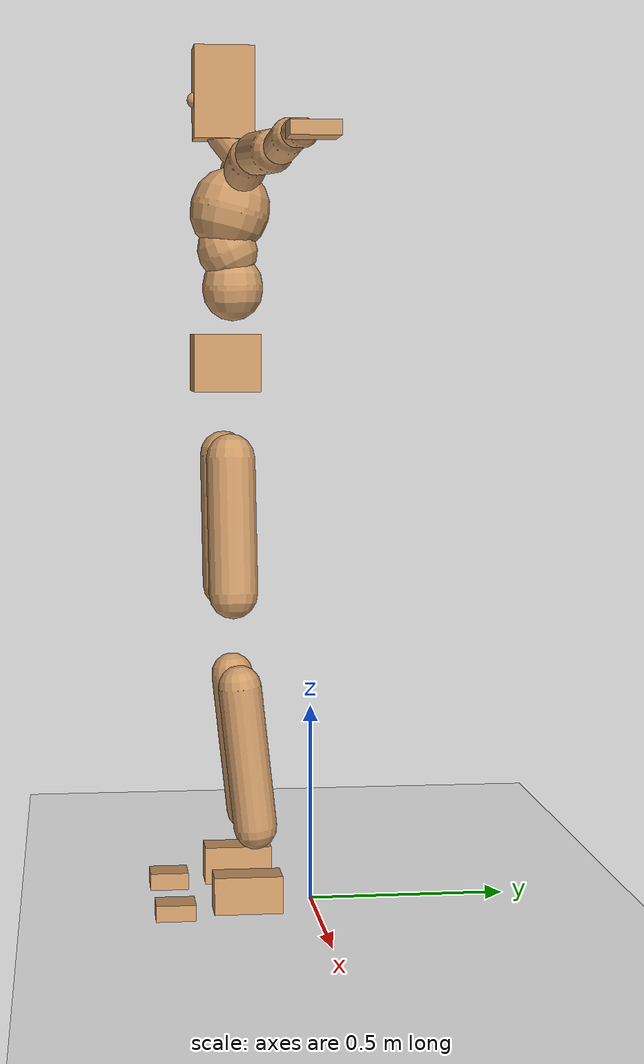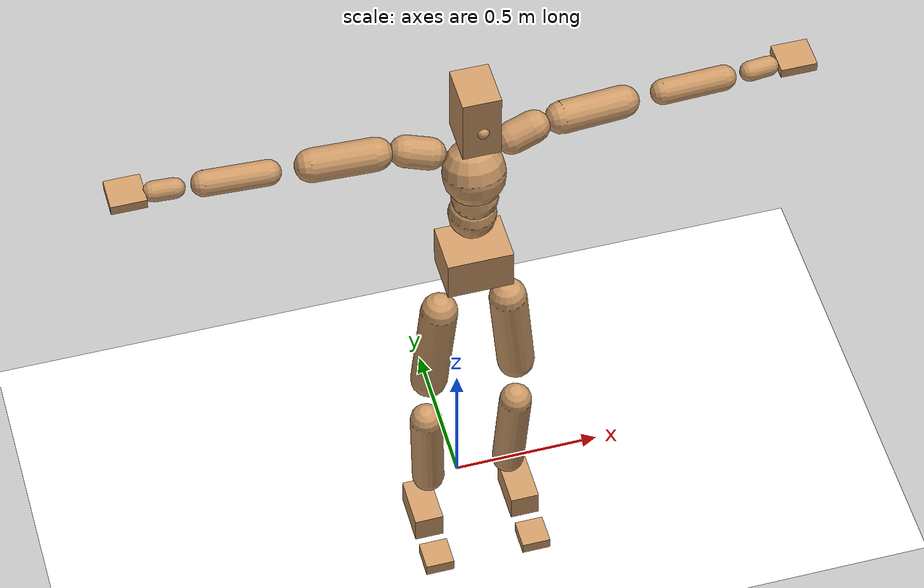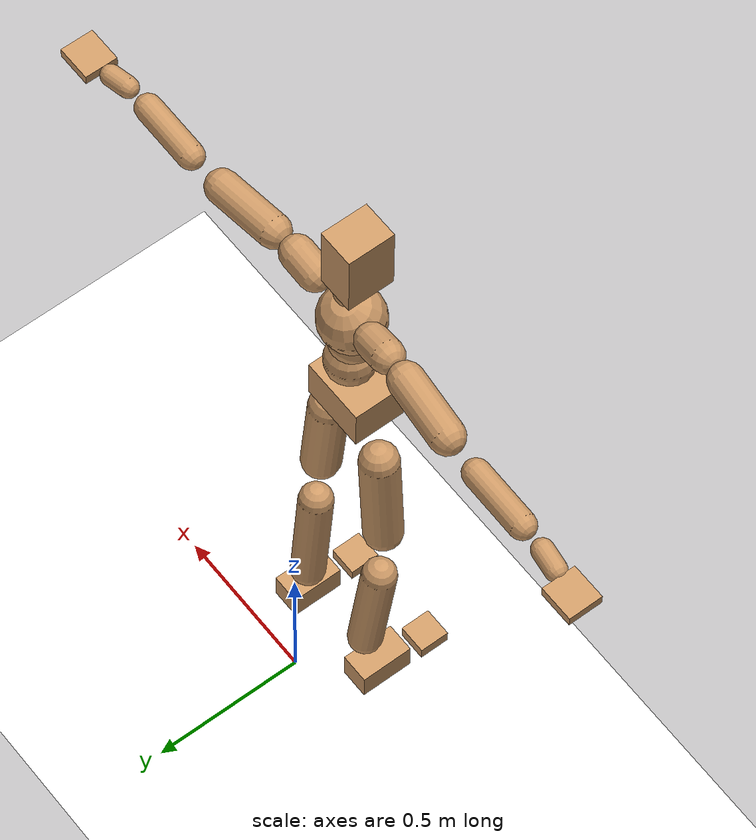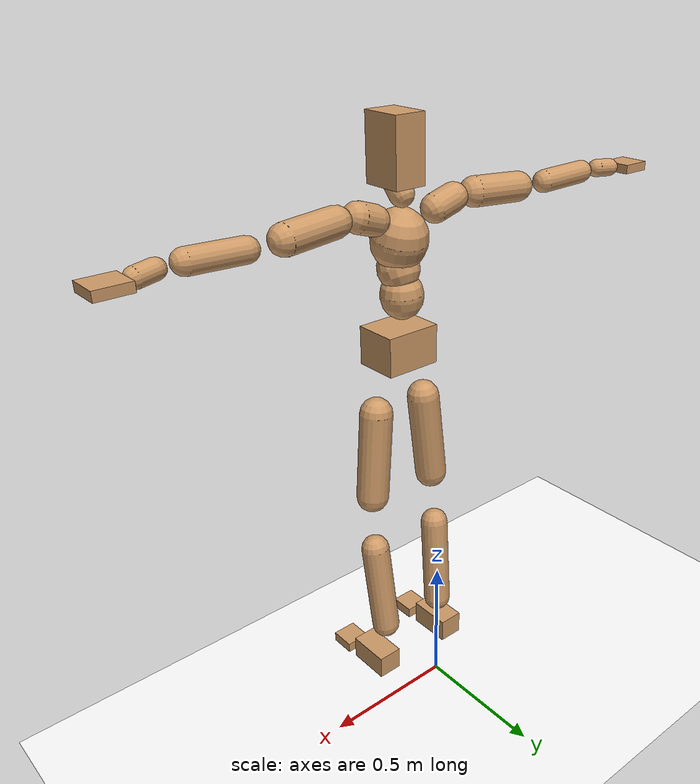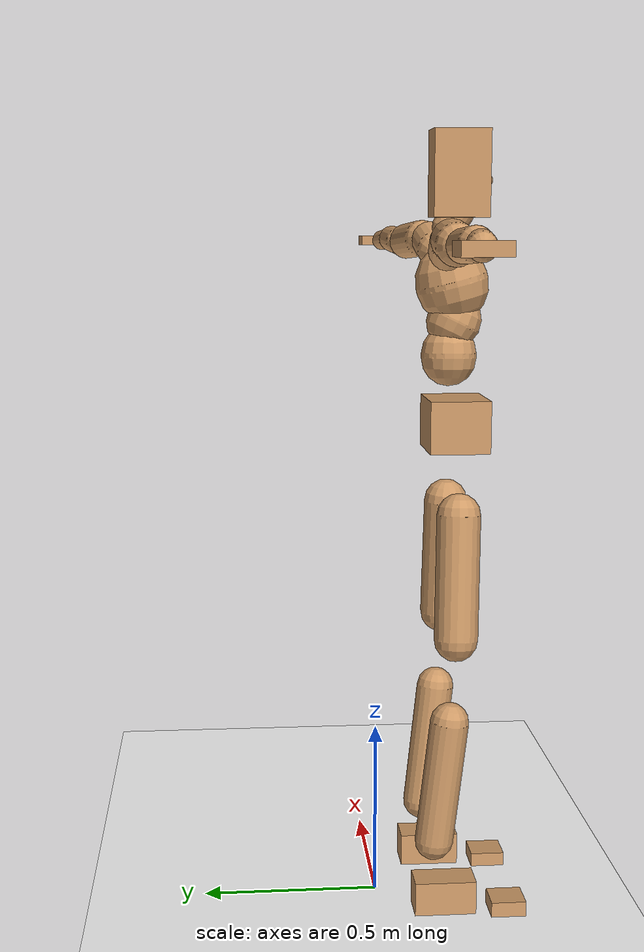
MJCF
<mujoco model="humanoid">
  <option integrator="implicitfast" />

  <visual>
    <global offwidth="1280" offheight="960" />
    <headlight active="1" ambient="0.34 0.34 0.34" diffuse="0.5 0.5 0.5" />
  </visual>

  <default>
    <joint damping="2" stiffness="2" armature="0.01" limited="true" solimplimit="0 .99 .01" />
    <geom condim="1" friction="0.7 0.005 0.0001" solimp=".99 .99 .003" solref="0.015 1" margin="0.001" rgba="0.8 0.6 .4 1" />
    <default class="smplcontact">
      <geom condim="3" friction="1. 0.005 0.0001" solref="0.015 1" solimp="0.98 0.98 0.001" priority="1" />
    </default>
    <default class="stiff_medium">
      <joint stiffness="10" />
    </default>
    <default class="stiff_medium_higher">
      <joint stiffness="50" />
    </default>
    <default class="stiff_high">
      <joint stiffness="100" />
    </default>
  </default>

  <asset>
    <texture type="skybox" builtin="gradient" rgb1="0.99 0.99 0.99" rgb2="0.608 0.828 0.892" width="100" />
    <texture builtin="flat" height="1278" mark="cross" markrgb="1 1 1" name="texgeom" random="0.01" rgb1="0.8 0.6 0.4" rgb2="0.8 0.6 0.4" type="cube" width="127" />
    <texture name="texplane" type="2d" builtin="checker" markrgb="1 1 1" rgb1="0.756 0.772 0.76" rgb2="0.6 0.6 0.6" width="100" height="100" />
    <material name="MatPlane" reflectance="0.5" texture="texplane" texrepeat="1 1" texuniform="true" />
    <material name="geom" texture="texgeom" texuniform="true" />
  </asset>

  <worldbody>
    <light name="tracking_light" pos="0 0 7" dir="0 0 -1" directional="true" cutoff="100" exponent="1" diffuse="1 1 1" specular="0.1 0.1 0.1" mode="trackcom" />
    <camera name="back" pos="0 3 2.4" xyaxes="-1 0 0 0 -1 2" mode="trackcom" />
    <camera name="side" pos="-3 0 2.4" xyaxes="0 -1 0 1 0 2" mode="trackcom" />
    <camera name="front_side" pos="-2.8 -2.8 0.8" xyaxes="0.5 -0.5 0 0.1 0.1 1" mode="trackcom" />
    <geom condim="3" name="floor" pos="0 0 0" rgba="1 1 1 1" size="100 100 .2" type="plane" material="MatPlane" />
    <body name="Pelvis" pos="-0.0018 -0.2233 1.39425" euler="90 0 0">
      <site name="Pelvis" size="0.01" />
      <freejoint name="Pelvis" />
      <geom type="box" pos="-0.0000 -0.0121 -0.0055" size="0.1069 0.0722 0.083" quat="1.0000 0.0000 0.0000 0.0000" density="3165.830099" name="Pelvis" />
      <body name="L_Hip" pos="0.10425 -0.1371 -0.0102">
        <joint name="L_Hip_x" type="hinge" pos="0 0 0" axis="1 0 0" stiffness="20.015620714285713" range="-160.0 22.92" class="stiff_medium" damping="35.83287359117287" armature="0.02851095036953482"/>
        <joint name="L_Hip_y" type="hinge" pos="0 0 0" axis="0 1 0" stiffness="19.866269693877552" range="-70.0 70.0" class="stiff_medium" damping="19.516878138369275" armature="0.019173631393182292"/>
        <joint name="L_Hip_z" type="hinge" pos="0 0 0" axis="0 0 1" stiffness="19.87905693877551" range="-28.65 90.0" class="stiff_medium" damping="23.812563344986486" armature="0.028524400066129187"/>
        <geom type="capsule" density="2040.816327" fromto="0.01035 -0.1125 -0.00135 0.0411 -0.4503 -0.0054" size="0.0615" name="L_Hip" />
        <body name="L_Knee" pos="0.05145 -0.5628 -0.00675">
          <joint name="L_Knee_x" type="hinge" pos="0 0 0" axis="1 0 0" range="-5.16 171.89" damping="17.990881080600367" armature="0.0263964285619257" stiffness="3.8318607346938776"/>
          <joint name="L_Knee_y" type="hinge" pos="0 0 0" axis="0 1 0" range="-4.58 6.88" damping="14.933138115539816" armature="0.017722990590982576" stiffness="3.932015113945578"/>
          <joint name="L_Knee_z" type="hinge" pos="0 0 0" axis="0 0 1" range="-6.88 4.58" damping="17.905219969869158" armature="0.02645515953053642" stiffness="3.7870318571428574"/>
          <geom type="capsule" density="1234.567901" fromto="-0.00405 -0.1194 -0.01305 -0.01635 -0.4776 -0.0525" size="0.0541" name="L_Knee" />
          <body name="L_Ankle" pos="-0.0204 -0.597 -0.06555">
            <joint name="L_Ankle_x" type="hinge" pos="0 0 0" axis="1 0 0" range="-45.84 45.84" class="stiff_medium" damping="9.919510798854859" armature="0.018221610090481143" stiffness="15.0"/>
            <joint name="L_Ankle_y" type="hinge" pos="0 0 0" axis="0 1 0" range="-74.48 22.92" class="stiff_medium" damping="4.917952818000752" armature="0.017915748088949288" stiffness="15.0"/>
            <joint name="L_Ankle_z" type="hinge" pos="0 0 0" axis="0 0 1" range="-4.58 4.58" class="stiff_medium" damping="9.269968981325551" armature="0.015913393502729238" stiffness="15.0"/>
            <geom type="box" pos="0.03495 -0.03585 0.0363" size="0.0483 0.0464 0.085" quat="1.0000 0.0000 0.0000 0.0000" density="449.071558" name="L_Ankle" class="smplcontact" />
            <body name="L_Toe" pos="0.0396 -0.0837 0.17895">
              <joint name="L_Toe_x" type="hinge" pos="0 0 0" axis="1 0 0" range="-91.67 22.92" armature="0.014752348892847546" damping="2.975131818207141" stiffness="3.0"/>
              <joint name="L_Toe_y" type="hinge" pos="0 0 0" axis="0 1 0" range="-4.58 4.58" armature="0.013348413454862205" damping="2.8300261611718933" stiffness="3.0"/>
              <joint name="L_Toe_z" type="hinge" pos="0 0 0" axis="0 0 1" range="-4.58 4.58" armature="0.010509731565734743" damping="2.511142954799835" stiffness="3.0"/>
              <geom type="box" pos="-0.0045 0.00825 0.0372" size="0.0478 0.02 0.0496" quat="1.0000 0.0000 0.0000 0.0000" density="423.206892" name="L_Toe" class="smplcontact" />
            </body>
          </body>
        </body>
      </body>
      <body name="R_Hip" pos="-0.10155 -0.13575 -0.00645">
        <joint name="R_Hip_x" type="hinge" pos="0 0 0" axis="1 0 0" stiffness="20.015620714285713" range="-160.0 22.92" class="stiff_medium" damping="35.83287359117287" armature="0.02851095036953482"/>
        <joint name="R_Hip_y" type="hinge" pos="0 0 0" axis="0 1 0" stiffness="19.866269693877552" range="-70.0 70.0" class="stiff_medium" damping="19.516878138369275" armature="0.019173631393182292"/>
        <joint name="R_Hip_z" type="hinge" pos="0 0 0" axis="0 0 1" stiffness="19.87905693877551" range="-90.0 28.65" class="stiff_medium" damping="23.812563344986486" armature="0.028524400066129187"/>
        <geom type="capsule" density="2040.816327" fromto="-0.01155 -0.11475 -0.0027 -0.0459 -0.45915 -0.01065" size="0.0606" name="R_Hip" />
        <body name="R_Knee" pos="-0.05745 -0.5739 -0.01335">
          <joint name="R_Knee_x" type="hinge" pos="0 0 0" axis="1 0 0" range="-5.16 171.89" damping="17.990881080600367" armature="0.0263964285619257" stiffness="3.8318607346938776"/>
          <joint name="R_Knee_y" type="hinge" pos="0 0 0" axis="0 1 0" range="-6.88 4.58" damping="14.933138115539816" armature="0.017722990590982576" stiffness="3.932015113945578"/>
          <joint name="R_Knee_z" type="hinge" pos="0 0 0" axis="0 0 1" range="-4.58 6.88" damping="17.905219969869158" armature="0.02645515953053642" stiffness="3.7870318571428574"/>
          <geom type="capsule" density="1234.567901" fromto="0.0048 -0.11955 -0.01275 0.0189 -0.47805 -0.0507" size="0.0541" name="R_Knee" />
          <body name="R_Ankle" pos="0.0237 -0.5976 -0.06345">
            <joint name="R_Ankle_x" type="hinge" pos="0 0 0" axis="1 0 0" range="-45.84 45.84" class="stiff_medium" damping="9.919510798854859" armature="0.018221610090481143" stiffness="15.0"/>
            <joint name="R_Ankle_y" type="hinge" pos="0 0 0" axis="0 1 0" range="-22.92 74.48" class="stiff_medium" damping="4.917952818000752" armature="0.017915748088949288" stiffness="15.0"/>
            <joint name="R_Ankle_z" type="hinge" pos="0 0 0" axis="0 0 1" range="-4.58 4.58" class="stiff_medium" damping="9.269968981325551" armature="0.015913393502729238" stiffness="15.0"/>
            <geom type="box" pos="-0.0318 -0.0261 0.0384" size="0.0483 0.0478 0.0865" quat="1.0000 0.0000 0.0000 0.0000" density="434.700981" name="R_Ankle" class="smplcontact" />
            <body name="R_Toe" pos="-0.0381 -0.07215 0.18495">
              <joint name="R_Toe_x" type="hinge" pos="0 0 0" axis="1 0 0" range="-91.67 22.92" armature="0.014752348892847546" damping="2.975131818207141" stiffness="3.0"/>
              <joint name="R_Toe_y" type="hinge" pos="0 0 0" axis="0 1 0" range="-4.58 4.58" armature="0.013348413454862205" damping="2.8300261611718933" stiffness="3.0"/>
              <joint name="R_Toe_z" type="hinge" pos="0 0 0" axis="0 0 1" range="-4.58 4.58" armature="0.010509731565734743" damping="2.511142954799835" stiffness="3.0"/>
              <geom type="box" pos="0.0063 0.00675 0.03405" size="0.0479 0.0216 0.0493" quat="1.0000 0.0000 0.0000 0.0000" density="407.384095" name="R_Toe" class="smplcontact" />
            </body>
          </body>
        </body>
      </body>
      <body name="Torso" pos="-0.0025 0.109 -0.0267">
        <joint name="Torso_x" type="hinge" pos="0 0 0" axis="1 0 0" range="-25.78 57.3" class="stiff_medium" damping="16.944789177371316" armature="0.011576079564418819" stiffness="11.023723673469387"/>
        <joint name="Torso_y" type="hinge" pos="0 0 0" axis="0 1 0" range="-57.3 57.3" class="stiff_high" damping="29.115087567135376" armature="0.01937626790595332" stiffness="109.37198124999998"/>
        <joint name="Torso_z" type="hinge" pos="0 0 0" axis="0 0 1" range="-34.38 34.38" class="stiff_high" damping="24.640771515328712" armature="0.01422824484933177" stiffness="106.68350652173912"/>
        <geom type="capsule" density="2040.816327" fromto="0.0025 0.0608 0.0005 0.003 0.0743 0.0006" size="0.0769" name="Torso" />
        <body name="Spine" pos="0.0055 0.1352 0.0011">
          <joint name="Spine_x" type="hinge" pos="0 0 0" axis="1 0 0" stiffness="11.23382224489796" range="-25.78 57.3" class="stiff_medium" damping="17.411062309630765" armature="0.011993349058515332"/>
          <joint name="Spine_y" type="hinge" pos="0 0 0" axis="0 1 0" stiffness="11.67224088888889" range="-57.3 57.3" class="stiff_high" damping="12.051053820080996" armature="0.019440876268553408"/>
          <joint name="Spine_z" type="hinge" pos="0 0 0" axis="0 0 1" stiffness="22.9563125" range="-34.38 34.38" class="stiff_high" damping="16.317554444807215" armature="0.016109257231005373"/>
          <geom type="capsule" density="2040.816327" fromto="0.0007 0.0238 0.0114 0.0008 0.0291 0.014" size="0.0755" name="Spine" />
          <body name="Chest" pos="0.0015 0.0529 0.0254">
            <joint name="Chest_x" type="hinge" pos="0 0 0" axis="1 0 0" stiffness="11.776115531914895" range="-25.78 57.3" class="stiff_medium" damping="18.021102303759754" armature="0.012256829035287775"/>
            <joint name="Chest_y" type="hinge" pos="0 0 0" axis="0 1 0" stiffness="13.448267333333334" range="-57.3 57.3" class="stiff_high" damping="12.937740431789003" armature="0.019447803587290643"/>
            <joint name="Chest_z" type="hinge" pos="0 0 0" axis="0 0 1" stiffness="23.267014782608697" range="-34.38 34.38" class="stiff_high" damping="16.847528832624963" armature="0.01694334891512798"/>
            <geom type="capsule" density="2040.816327" fromto="-0.0009 0.0682 -0.0173 -0.001 0.0833 -0.0212" size="0.1002" name="Chest" />
            <body name="Neck" pos="-0.0028 0.2139 -0.0429">
              <joint name="Neck_x" type="hinge" pos="0 0 0" axis="1 0 0" range="-28.65 57.3" class="stiff_medium_higher" damping="9.999999999999979" armature="0.009999999999999955" stiffness="50.0"/>
              <joint name="Neck_y" type="hinge" pos="0 0 0" axis="0 1 0" range="-40.11 40.11" class="stiff_medium_higher" damping="10.0" armature="0.01" stiffness="50.0"/>
              <joint name="Neck_z" type="hinge" pos="0 0 0" axis="0 0 1" range="-40.11 40.11" class="stiff_medium_higher" damping="9.999999999999968" armature="0.00999999999999994" stiffness="50.0"/>
              <geom type="capsule" density="1000" fromto="0.001 0.013 0.0103 0.0041 0.052 0.0411" size="0.0436" name="Neck" />
              <body name="Head" pos="0.0052 0.065 0.0513">
                <joint name="Head_x" type="hinge" pos="0 0 0" axis="1 0 0" range="-28.65 57.3" class="stiff_medium_higher" damping="1.9999999999999931" armature="0.009999999999999933" stiffness="50.0"/>
                <joint name="Head_y" type="hinge" pos="0 0 0" axis="0 1 0" range="-40.11 40.11" class="stiff_medium_higher" damping="1.9999999999999998" armature="0.009999999999999998" stiffness="50.0"/>
                <joint name="Head_z" type="hinge" pos="0 0 0" axis="0 0 1" range="-40.11 40.11" class="stiff_medium_higher" damping="1.999999999999993" armature="0.00999999999999993" stiffness="50.0"/>
                <geom type="box" pos="-0.0042 0.0876 -0.0116" size="0.0606 0.1154 0.076" quat="1.0000 0.0000 0.0000 0.0000" density="1018.069894" name="Head" />
                <geom type="capsule" name="nose" size="0.02 0.01" pos="0 0.07 0.05" quat="1 0 0 0" mass="0" contype="0" conaffinity="0" />
              </body>
            </body>
            <body name="L_Thorax" pos="0.10244 0.15821 -0.04433">
              <joint name="L_Thorax_x" type="hinge" pos="0 0 0" axis="1 0 0" range="-10.89 4.58" class="stiff_medium_higher" damping="31.589735797957857" armature="0.01622387350427031" stiffness="76.88603214285715"/>
              <joint name="L_Thorax_y" type="hinge" pos="0 0 0" axis="0 1 0" range="-28.65 17.19" class="stiff_medium_higher" damping="34.899895599714064" armature="0.01967496307175569" stiffness="77.38278265306123"/>
              <joint name="L_Thorax_z" type="hinge" pos="0 0 0" axis="0 0 1" range="-31.51 40.11" class="stiff_medium_higher" damping="34.901462278801546" armature="0.019678125977203677" stiffness="77.37729132653061"/>
              <geom type="capsule" density="1000" fromto="0.02366 0.00793 -0.00234 0.09464 0.03172 -0.00923" size="0.0521" name="L_Thorax" />
              <body name="L_Shoulder" pos="0.1183 0.03965 -0.01157">
                <joint name="L_Shoulder_x" type="hinge" pos="0 0 0" axis="1 0 0" range="-97.4 97.4" class="stiff_medium" damping="9.029989056678971" armature="0.014800063709013938" stiffness="15.304120000000001"/>
                <joint name="L_Shoulder_y" type="hinge" pos="0 0 0" axis="0 1 0" range="-108.86 80.21" class="stiff_medium" damping="10.416659800941957" armature="0.019521721968520908" stiffness="15.439610408163267"/>
                <joint name="L_Shoulder_z" type="hinge" pos="0 0 0" axis="0 0 1" range="-97.4 85.94" class="stiff_medium" damping="10.414978319288075" armature="0.019525527681653106" stiffness="15.431617857142857"/>
                <geom type="capsule" density="1000" fromto="0.06747 -0.00338 -0.00715 0.27001 -0.01326 -0.0286" size="0.0517" name="L_Shoulder" />
                <body name="L_Elbow" pos="0.33748 -0.01664 -0.03575">
                  <joint name="L_Elbow_x" type="hinge" pos="0 0 0" axis="1 0 0" range="-17.19 4.58" damping="6.893935965131414" armature="0.012655354053031323" stiffness="3.0043475918367353"/>
                  <joint name="L_Elbow_y" type="hinge" pos="0 0 0" axis="0 1 0" range="-180.0 17.19" damping="8.400044856786579" armature="0.018780901424265514" stiffness="3.005638632653061"/>
                  <joint name="L_Elbow_z" type="hinge" pos="0 0 0" axis="0 0 1" range="-100.84 4.58" damping="8.40142749165566" armature="0.018800821954664815" stiffness="3.003442469387755"/>
                  <geom type="capsule" density="1000" fromto="0.06474 0.00234 -0.00026 0.25922 0.00936 -0.00117" size="0.0405" name="L_Elbow" />
                  <body name="L_Wrist" pos="0.32396 0.0117 -0.00156">
                    <joint name="L_Wrist_x" type="hinge" pos="0 0 0" axis="1 0 0" range="-180.0 22.92" armature="0.012290327941728303" damping="2.5957833940279276" stiffness="2.7412171020408165"/>
                    <joint name="L_Wrist_y" type="hinge" pos="0 0 0" axis="0 1 0" range="-17.19 17.19" armature="0.016530608092611403" damping="3.0218064127612196" stiffness="2.7619413469387752"/>
                    <joint name="L_Wrist_z" type="hinge" pos="0 0 0" axis="0 0 1" range="-22.92 22.92" armature="0.016761001490565936" damping="3.0381836187287754" stiffness="2.7535823877551024"/>
                    <geom type="capsule" density="1000" fromto="0.02184 -0.00208 -0.0039 0.08736 -0.00845 -0.0156" size="0.0318" name="L_Wrist" class="smplcontact" />
                    <body name="L_Hand" pos="0.1092 -0.01066 -0.01937">
                      <joint name="L_Hand_x" type="hinge" pos="0 0 0" axis="1 0 0" range="-17.19 17.19" armature="0.010300606507591748" damping="2.314371487887739" stiffness="2.5999999999999996"/>
                      <joint name="L_Hand_y" type="hinge" pos="0 0 0" axis="0 1 0" range="-51.57 51.57" armature="0.013635420978089549" damping="2.6627840521917214" stiffness="2.5999999999999996"/>
                      <joint name="L_Hand_z" type="hinge" pos="0 0 0" axis="0 0 1" range="-91.67 91.67" armature="0.01452436133904174" damping="2.748211763365717" stiffness="2.5999999999999996"/>
                      <geom type="box" pos="0.06409 0.0013 -0.00754" size="0.0585 0.0158 0.0538" quat="1.0000 0.0000 0.0000 0.0000" density="400.552564" name="L_Hand" class="smplcontact" />
                    </body>
                  </body>
                </body>
              </body>
            </body>
            <body name="R_Thorax" pos="-0.10634 0.15444 -0.05018">
              <joint name="R_Thorax_x" type="hinge" pos="0 0 0" axis="1 0 0" range="-10.89 4.58" class="stiff_medium_higher" damping="31.589735797957857" armature="0.01622387350427031" stiffness="76.88603214285715"/>
              <joint name="R_Thorax_y" type="hinge" pos="0 0 0" axis="0 1 0" range="-17.19 28.65" class="stiff_medium_higher" damping="34.899895599714064" armature="0.01967496307175569" stiffness="77.38278265306123"/>
              <joint name="R_Thorax_z" type="hinge" pos="0 0 0" axis="0 0 1" range="-40.11 31.51" class="stiff_medium_higher" damping="34.901462278801546" armature="0.019678125977203677" stiffness="77.37729132653061"/>
              <geom type="capsule" density="1000" fromto="-0.02496 0.00845 -0.00234 -0.09984 0.0338 -0.00949" size="0.0511" name="R_Thorax" />
              <body name="R_Shoulder" pos="-0.1248 0.04238 -0.01183">
                <joint name="R_Shoulder_x" type="hinge" pos="0 0 0" axis="1 0 0" range="-97.4 97.4" class="stiff_medium" damping="9.029989056678971" armature="0.014800063709013938" stiffness="15.304120000000001"/>
                <joint name="R_Shoulder_y" type="hinge" pos="0 0 0" axis="0 1 0" range="-80.21 108.86" class="stiff_medium" damping="10.416659800941957" armature="0.019521721968520908" stiffness="15.439610408163267"/>
                <joint name="R_Shoulder_z" type="hinge" pos="0 0 0" axis="0 0 1" range="-85.94 97.4" class="stiff_medium" damping="10.414978319288075" armature="0.019525527681653106" stiffness="15.431617857142857"/>
                <geom type="capsule" density="1000" fromto="-0.06591 -0.00351 -0.00559 -0.2639 -0.01391 -0.02223" size="0.0531" name="R_Shoulder" />
                <body name="R_Elbow" pos="-0.32981 -0.01729 -0.02782">
                  <joint name="R_Elbow_x" type="hinge" pos="0 0 0" axis="1 0 0" range="-17.19 4.58" damping="6.893935965131414" armature="0.012655354053031323" stiffness="3.0043475918367353"/>
                  <joint name="R_Elbow_y" type="hinge" pos="0 0 0" axis="0 1 0" range="-17.19 180.0" damping="8.400044856786579" armature="0.018780901424265514" stiffness="3.005638632653061"/>
                  <joint name="R_Elbow_z" type="hinge" pos="0 0 0" axis="0 0 1" range="-4.58 100.84" damping="8.40142749165566" armature="0.018800821954664815" stiffness="3.003442469387755"/>
                  <geom type="capsule" density="1000" fromto="-0.06643 0.00208 -0.00143 -0.26546 0.00806 -0.00572" size="0.0408" name="R_Elbow" />
                  <body name="R_Wrist" pos="-0.33189 0.01014 -0.00728">
                    <joint name="R_Wrist_x" type="hinge" pos="0 0 0" axis="1 0 0" range="-180.0 22.92" armature="0.012290327941728303" damping="2.5957833940279276" stiffness="2.7412171020408165"/>
                    <joint name="R_Wrist_y" type="hinge" pos="0 0 0" axis="0 1 0" range="-17.19 17.19" armature="0.016530608092611403" damping="3.0218064127612196" stiffness="2.7619413469387752"/>
                    <joint name="R_Wrist_z" type="hinge" pos="0 0 0" axis="0 0 1" range="-22.92 22.92" armature="0.016761001490565936" damping="3.0381836187287754" stiffness="2.7535823877551024"/>
                    <geom type="capsule" density="1000" fromto="-0.02197 -0.00156 -0.00273 -0.08801 -0.00637 -0.01079" size="0.0326" name="R_Wrist" class="smplcontact" />
                    <body name="R_Hand" pos="-0.10998 -0.00793 -0.01339">
                      <joint name="R_Hand_x" type="hinge" pos="0 0 0" axis="1 0 0" range="-17.19 17.19" armature="0.010300606507591748" damping="2.314371487887739" stiffness="2.5999999999999996"/>
                      <joint name="R_Hand_y" type="hinge" pos="0 0 0" axis="0 1 0" range="-51.57 51.57" armature="0.013635420978089549" damping="2.6627840521917214" stiffness="2.5999999999999996"/>
                      <joint name="R_Hand_z" type="hinge" pos="0 0 0" axis="0 0 1" range="-91.67 91.67" armature="0.01452436133904174" damping="2.748211763365717" stiffness="2.5999999999999996"/>
                      <geom type="box" pos="-0.06006 -0.00117 -0.01027" size="0.0569 0.0164 0.0546" quat="1.0000 0.0000 0.0000 0.0000" density="403.679611" name="R_Hand" class="smplcontact" />
                    </body>
                  </body>
                </body>
              </body>
            </body>
          </body>
        </body>
      </body>
    </body>
  </worldbody>
  <actuator>
    <general name="L_Hip_x" joint="L_Hip_x" biastype="affine" gainprm="575.1089582783409" biasprm="-430.985873610294 -360.28117285714285 -4.7777164788230495" ctrllimited="true" ctrlrange="-1 1" forcerange="-720.5623457142857 720.5623457142857" />
    <general name="L_Hip_y" joint="L_Hip_y" biastype="affine" gainprm="436.88208847163486" biasprm="0.0 -357.5928544897959 -3.903375627673855" ctrllimited="true" ctrlrange="-1 1" forcerange="-715.1857089795918 715.1857089795918" />
    <general name="L_Hip_z" joint="L_Hip_z" biastype="affine" gainprm="370.49589223625946" biasprm="191.57120091609366 -357.82302489795916 -4.762512668997298" ctrllimited="true" ctrlrange="-1 1" forcerange="-715.6460497959183 715.6460497959183" />
    <general name="L_Knee_x" joint="L_Knee_x" biastype="affine" gainprm="532.8384166851074" biasprm="501.7800012081782 -344.867466122449 -4.497720270150092" ctrllimited="true" ctrlrange="-1 1" forcerange="-689.734932244898 689.734932244898" />
    <general name="L_Knee_y" joint="L_Knee_y" biastype="affine" gainprm="35.39074276489669" biasprm="7.10285413257089 -353.88136025510204 -3.733284528884954" ctrllimited="true" ctrlrange="-1 1" forcerange="-707.7627205102041 707.7627205102041" />
    <general name="L_Knee_z" joint="L_Knee_z" biastype="affine" gainprm="34.085797336654615" biasprm="-6.840954090253544 -340.83286714285714 -4.4763049924672895" ctrllimited="true" ctrlrange="-1 1" forcerange="-681.6657342857143 681.6657342857143" />
    <general name="L_Ankle_x" joint="L_Ankle_x" biastype="affine" gainprm="108.0079554304171" biasprm="0.0 -135.0 -3.3065035996182863" ctrllimited="true" ctrlrange="-1 1" forcerange="-270.0 270.0" />
    <general name="L_Ankle_y" joint="L_Ankle_y" biastype="affine" gainprm="114.74667167236721" biasprm="-60.742693957158664 -135.0 -3.2786352120005016" ctrllimited="true" ctrlrange="-1 1" forcerange="-270.0 270.0" />
    <general name="L_Ankle_z" joint="L_Ankle_z" biastype="affine" gainprm="10.791370765080938" biasprm="0.0 -135.0 -3.0899896604418506" ctrllimited="true" ctrlrange="-1 1" forcerange="-270.0 270.0" />
    <general name="L_Toe_x" joint="L_Toe_x" biastype="affine" gainprm="107.99853065245631" biasprm="-64.79534848028948 -108.0 -1.1900527272828565" ctrllimited="true" ctrlrange="-1 1" forcerange="-216.0 216.0" />
    <general name="L_Toe_y" joint="L_Toe_y" biastype="affine" gainprm="8.633096612064751" biasprm="0.0 -108.0 -1.1320104644687574" ctrllimited="true" ctrlrange="-1 1" forcerange="-216.0 216.0" />
    <general name="L_Toe_z" joint="L_Toe_z" biastype="affine" gainprm="8.633096612064751" biasprm="0.0 -108.0 -1.0044571819199342" ctrllimited="true" ctrlrange="-1 1" forcerange="-216.0 216.0" />
    <general name="R_Hip_x" joint="R_Hip_x" biastype="affine" gainprm="575.1089582783409" biasprm="-430.985873610294 -360.28117285714285 -4.7777164788230495" ctrllimited="true" ctrlrange="-1 1" forcerange="-720.5623457142857 720.5623457142857" />
    <general name="R_Hip_y" joint="R_Hip_y" biastype="affine" gainprm="436.88208847163486" biasprm="0.0 -357.5928544897959 -3.903375627673855" ctrllimited="true" ctrlrange="-1 1" forcerange="-715.1857089795918 715.1857089795918" />
    <general name="R_Hip_z" joint="R_Hip_z" biastype="affine" gainprm="370.49589223625946" biasprm="-191.57120091609366 -357.82302489795916 -4.762512668997298" ctrllimited="true" ctrlrange="-1 1" forcerange="-715.6460497959183 715.6460497959183" />
    <general name="R_Knee_x" joint="R_Knee_x" biastype="affine" gainprm="532.8384166851074" biasprm="501.7800012081782 -344.867466122449 -4.497720270150092" ctrllimited="true" ctrlrange="-1 1" forcerange="-689.734932244898 689.734932244898" />
    <general name="R_Knee_y" joint="R_Knee_y" biastype="affine" gainprm="35.39074276489669" biasprm="-7.10285413257089 -353.88136025510204 -3.733284528884954" ctrllimited="true" ctrlrange="-1 1" forcerange="-707.7627205102041 707.7627205102041" />
    <general name="R_Knee_z" joint="R_Knee_z" biastype="affine" gainprm="34.085797336654615" biasprm="6.840954090253544 -340.83286714285714 -4.4763049924672895" ctrllimited="true" ctrlrange="-1 1" forcerange="-681.6657342857143 681.6657342857143" />
    <general name="R_Ankle_x" joint="R_Ankle_x" biastype="affine" gainprm="108.0079554304171" biasprm="0.0 -135.0 -3.3065035996182863" ctrllimited="true" ctrlrange="-1 1" forcerange="-270.0 270.0" />
    <general name="R_Ankle_y" joint="R_Ankle_y" biastype="affine" gainprm="114.74667167236721" biasprm="60.742693957158664 -135.0 -3.2786352120005016" ctrllimited="true" ctrlrange="-1 1" forcerange="-270.0 270.0" />
    <general name="R_Ankle_z" joint="R_Ankle_z" biastype="affine" gainprm="10.791370765080938" biasprm="0.0 -135.0 -3.0899896604418506" ctrllimited="true" ctrlrange="-1 1" forcerange="-270.0 270.0" />
    <general name="R_Toe_x" joint="R_Toe_x" biastype="affine" gainprm="107.99853065245631" biasprm="-64.79534848028948 -108.0 -1.1900527272828565" ctrllimited="true" ctrlrange="-1 1" forcerange="-216.0 216.0" />
    <general name="R_Toe_y" joint="R_Toe_y" biastype="affine" gainprm="8.633096612064751" biasprm="0.0 -108.0 -1.1320104644687574" ctrllimited="true" ctrlrange="-1 1" forcerange="-216.0 216.0" />
    <general name="R_Toe_z" joint="R_Toe_z" biastype="affine" gainprm="8.633096612064751" biasprm="0.0 -108.0 -1.0044571819199342" ctrllimited="true" ctrlrange="-1 1" forcerange="-216.0 216.0" />
    <general name="Torso_x" joint="Torso_x" biastype="affine" gainprm="191.81537709933156" biasprm="72.77347961207185 -264.5693681632653 -4.518610447299017" ctrllimited="true" ctrlrange="-1 1" forcerange="-396.85405224489796 396.85405224489796" />
    <general name="Torso_y" joint="Torso_y" biastype="affine" gainprm="262.51209058192023" biasprm="0.0 -262.492755 -5.823017513427075" ctrllimited="true" ctrlrange="-1 1" forcerange="-393.7391324999999 393.7391324999999" />
    <general name="Torso_z" joint="Torso_z" biastype="affine" gainprm="153.63556556747483" biasprm="0.0 -256.0404156521739 -4.928154303065742" ctrllimited="true" ctrlrange="-1 1" forcerange="-384.0606234782608 384.0606234782608" />
    <general name="Spine_x" joint="Spine_x" biastype="affine" gainprm="195.47114151254812" biasprm="74.16045234082229 -269.61173387755105 -4.642949949234871" ctrllimited="true" ctrlrange="-1 1" forcerange="-404.41760081632657 404.41760081632657" />
    <general name="Spine_y" joint="Spine_y" biastype="affine" gainprm="280.1544163778229" biasprm="0.0 -280.13378133333333 -6.025526910040498" ctrllimited="true" ctrlrange="-1 1" forcerange="-420.200672 420.200672" />
    <general name="Spine_z" joint="Spine_z" biastype="affine" gainprm="165.29762515644848" biasprm="0.0 -275.47575 -5.4391848149357385" ctrllimited="true" ctrlrange="-1 1" forcerange="-413.213625 413.213625" />
    <general name="Chest_x" joint="Chest_x" biastype="affine" gainprm="204.90717188021173" biasprm="77.74041956745634 -282.62677276595747 -4.805627281002601" ctrllimited="true" ctrlrange="-1 1" forcerange="-423.94015914893623 423.94015914893623" />
    <general name="Chest_y" joint="Chest_y" biastype="affine" gainprm="322.78219083444463" biasprm="0.0 -322.758416 -6.468870215894501" ctrllimited="true" ctrlrange="-1 1" forcerange="-484.1376240000001 484.1376240000001" />
    <general name="Chest_z" joint="Chest_z" biastype="affine" gainprm="167.53484637592376" biasprm="0.0 -279.20417739130437 -5.615842944208321" ctrllimited="true" ctrlrange="-1 1" forcerange="-418.8062660869566 418.8062660869566" />
    <general name="Neck_x" joint="Neck_x" biastype="affine" gainprm="27.00198885760427" biasprm="9.000662952534757 -36.0 -0.7999999999999983" ctrllimited="true" ctrlrange="-1 1" forcerange="-72.0 72.0" />
    <general name="Neck_y" joint="Neck_y" biastype="affine" gainprm="25.20185626709732" biasprm="0.0 -36.0 -0.8" ctrllimited="true" ctrlrange="-1 1" forcerange="-72.0 72.0" />
    <general name="Neck_z" joint="Neck_z" biastype="affine" gainprm="25.20185626709732" biasprm="0.0 -36.0 -0.7999999999999976" ctrllimited="true" ctrlrange="-1 1" forcerange="-72.0 72.0" />
    <general name="Head_x" joint="Head_x" biastype="affine" gainprm="18.001325905069514" biasprm="6.000441968356505 -24.0 -0.7999999999999973" ctrllimited="true" ctrlrange="-1 1" forcerange="-48.0 48.0" />
    <general name="Head_y" joint="Head_y" biastype="affine" gainprm="16.801237511398213" biasprm="0.0 -24.0 -0.7999999999999999" ctrllimited="true" ctrlrange="-1 1" forcerange="-48.0 48.0" />
    <general name="Head_z" joint="Head_z" biastype="affine" gainprm="16.801237511398213" biasprm="0.0 -24.0 -0.7999999999999972" ctrllimited="true" ctrlrange="-1 1" forcerange="-48.0 48.0" />
    <general name="L_Thorax_x" joint="L_Thorax_x" biastype="affine" gainprm="24.911299101430362" biasprm="-10.160975910150333 -184.52647714285715 -2.5271788638366286" ctrllimited="true" ctrlrange="-1 1" forcerange="-369.0529542857143 369.0529542857143" />
    <general name="L_Thorax_y" joint="L_Thorax_y" biastype="affine" gainprm="74.29294346554212" biasprm="-18.57323586638553 -185.71867836734694 -2.791991647977125" ctrllimited="true" ctrlrange="-1 1" forcerange="-371.4373567346939 371.4373567346939" />
    <general name="L_Thorax_z" joint="L_Thorax_z" biastype="affine" gainprm="116.06638363736599" biasprm="13.937041319203399 -185.70549918367348 -2.792116982304124" ctrllimited="true" ctrlrange="-1 1" forcerange="-371.41099836734696 371.41099836734696" />
    <general name="L_Shoulder_x" joint="L_Shoulder_x" biastype="affine" gainprm="124.8779970044095" biasprm="0.0 -73.459776 -2.407997081781059" ctrllimited="true" ctrlrange="-1 1" forcerange="-146.919552 146.919552" />
    <general name="L_Shoulder_y" joint="L_Shoulder_y" biastype="affine" gainprm="122.27778721627745" biasprm="-18.528897253643354 -74.11012995918368 -2.777775946917856" ctrllimited="true" ctrlrange="-1 1" forcerange="-148.22025991836736 148.22025991836736" />
    <general name="L_Shoulder_z" joint="L_Shoulder_z" biastype="affine" gainprm="118.51062714799397" biasprm="-7.40772219437119 -74.0717657142857 -2.7773275518101537" ctrllimited="true" ctrlrange="-1 1" forcerange="-148.1435314285714 148.1435314285714" />
    <general name="L_Elbow_x" joint="L_Elbow_x" biastype="affine" gainprm="20.54747587592092" biasprm="-11.901868203737386 -108.15651330612246 -1.1030297544210261" ctrllimited="true" ctrlrange="-1 1" forcerange="-216.31302661224493 216.31302661224493" />
    <general name="L_Elbow_y" joint="L_Elbow_y" biastype="affine" gainprm="186.19650463217005" biasprm="-153.73321628461693 -108.20299077551019 -1.3440071770858526" ctrllimited="true" ctrlrange="-1 1" forcerange="-216.40598155102037 216.40598155102037" />
    <general name="L_Elbow_z" joint="L_Elbow_z" biastype="affine" gainprm="99.4700192692226" biasprm="-90.82701626688834 -108.12392889795919 -1.3442283986649057" ctrllimited="true" ctrlrange="-1 1" forcerange="-216.24785779591838 216.24785779591838" />
    <general name="L_Wrist_x" joint="L_Wrist_x" biastype="affine" gainprm="29.125065357690858" biasprm="-22.545659700305933 -16.447302612244897 -1.0383133576111712" ctrllimited="true" ctrlrange="-1 1" forcerange="-32.894605224489794 32.894605224489794" />
    <general name="L_Wrist_y" joint="L_Wrist_y" biastype="affine" gainprm="4.971860631693158" biasprm="0.0 -16.571648081632652 -1.208722565104488" ctrllimited="true" ctrlrange="-1 1" forcerange="-33.143296163265305 33.143296163265305" />
    <general name="L_Wrist_z" joint="L_Wrist_z" biastype="affine" gainprm="6.609084529125214" biasprm="0.0 -16.521494326530615 -1.2152734474915103" ctrllimited="true" ctrlrange="-1 1" forcerange="-33.04298865306123 33.04298865306123" />
    <general name="L_Hand_x" joint="L_Hand_x" biastype="affine" gainprm="4.680344735318074" biasprm="0.0 -15.599999999999998 -0.9257485951550957" ctrllimited="true" ctrlrange="-1 1" forcerange="-31.199999999999996 31.199999999999996" />
    <general name="L_Hand_y" joint="L_Hand_y" biastype="affine" gainprm="14.041034205954219" biasprm="0.0 -15.599999999999998 -1.0651136208766887" ctrllimited="true" ctrlrange="-1 1" forcerange="-31.199999999999996 31.199999999999996" />
    <general name="L_Hand_z" joint="L_Hand_z" biastype="affine" gainprm="24.959115874729946" biasprm="0.0 -15.599999999999998 -1.0992847053462869" ctrllimited="true" ctrlrange="-1 1" forcerange="-31.199999999999996 31.199999999999996" />
    <general name="R_Thorax_x" joint="R_Thorax_x" biastype="affine" gainprm="24.911299101430362" biasprm="-10.160975910150333 -184.52647714285715 -2.5271788638366286" ctrllimited="true" ctrlrange="-1 1" forcerange="-369.0529542857143 369.0529542857143" />
    <general name="R_Thorax_y" joint="R_Thorax_y" biastype="affine" gainprm="74.29294346554212" biasprm="18.57323586638552 -185.71867836734694 -2.791991647977125" ctrllimited="true" ctrlrange="-1 1" forcerange="-371.4373567346939 371.4373567346939" />
    <general name="R_Thorax_z" joint="R_Thorax_z" biastype="affine" gainprm="116.06638363736599" biasprm="-13.937041319203399 -185.70549918367348 -2.792116982304124" ctrllimited="true" ctrlrange="-1 1" forcerange="-371.41099836734696 371.41099836734696" />
    <general name="R_Shoulder_x" joint="R_Shoulder_x" biastype="affine" gainprm="124.8779970044095" biasprm="0.0 -73.459776 -2.407997081781059" ctrllimited="true" ctrlrange="-1 1" forcerange="-146.919552 146.919552" />
    <general name="R_Shoulder_y" joint="R_Shoulder_y" biastype="affine" gainprm="122.27778721627745" biasprm="18.528897253643354 -74.11012995918368 -2.777775946917856" ctrllimited="true" ctrlrange="-1 1" forcerange="-148.22025991836736 148.22025991836736" />
    <general name="R_Shoulder_z" joint="R_Shoulder_z" biastype="affine" gainprm="118.51062714799397" biasprm="7.407722194371173 -74.0717657142857 -2.7773275518101537" ctrllimited="true" ctrlrange="-1 1" forcerange="-148.1435314285714 148.1435314285714" />
    <general name="R_Elbow_x" joint="R_Elbow_x" biastype="affine" gainprm="20.54747587592092" biasprm="-11.901868203737386 -108.15651330612246 -1.1030297544210261" ctrllimited="true" ctrlrange="-1 1" forcerange="-216.31302661224493 216.31302661224493" />
    <general name="R_Elbow_y" joint="R_Elbow_y" biastype="affine" gainprm="186.19650463217005" biasprm="153.73321628461693 -108.20299077551019 -1.3440071770858526" ctrllimited="true" ctrlrange="-1 1" forcerange="-216.40598155102037 216.40598155102037" />
    <general name="R_Elbow_z" joint="R_Elbow_z" biastype="affine" gainprm="99.4700192692226" biasprm="90.82701626688832 -108.12392889795919 -1.3442283986649057" ctrllimited="true" ctrlrange="-1 1" forcerange="-216.24785779591838 216.24785779591838" />
    <general name="R_Wrist_x" joint="R_Wrist_x" biastype="affine" gainprm="29.125065357690858" biasprm="-22.545659700305933 -16.447302612244897 -1.0383133576111712" ctrllimited="true" ctrlrange="-1 1" forcerange="-32.894605224489794 32.894605224489794" />
    <general name="R_Wrist_y" joint="R_Wrist_y" biastype="affine" gainprm="4.971860631693158" biasprm="0.0 -16.571648081632652 -1.208722565104488" ctrllimited="true" ctrlrange="-1 1" forcerange="-33.143296163265305 33.143296163265305" />
    <general name="R_Wrist_z" joint="R_Wrist_z" biastype="affine" gainprm="6.609084529125214" biasprm="0.0 -16.521494326530615 -1.2152734474915103" ctrllimited="true" ctrlrange="-1 1" forcerange="-33.04298865306123 33.04298865306123" />
    <general name="R_Hand_x" joint="R_Hand_x" biastype="affine" gainprm="4.680344735318074" biasprm="0.0 -15.599999999999998 -0.9257485951550957" ctrllimited="true" ctrlrange="-1 1" forcerange="-31.199999999999996 31.199999999999996" />
    <general name="R_Hand_y" joint="R_Hand_y" biastype="affine" gainprm="14.041034205954219" biasprm="0.0 -15.599999999999998 -1.0651136208766887" ctrllimited="true" ctrlrange="-1 1" forcerange="-31.199999999999996 31.199999999999996" />
    <general name="R_Hand_z" joint="R_Hand_z" biastype="affine" gainprm="24.959115874729946" biasprm="0.0 -15.599999999999998 -1.0992847053462869" ctrllimited="true" ctrlrange="-1 1" forcerange="-31.199999999999996 31.199999999999996" />
  </actuator>
  <contact>
    <exclude body1="Torso" body2="Chest" />
    <exclude body1="Head" body2="Chest" />
    <exclude body1="R_Knee" body2="R_Toe" />
    <exclude body1="R_Knee" body2="L_Ankle" />
    <exclude body1="R_Knee" body2="L_Toe" />
    <exclude body1="L_Knee" body2="L_Toe" />
    <exclude body1="L_Knee" body2="R_Ankle" />
    <exclude body1="L_Knee" body2="R_Toe" />
    <exclude body1="L_Shoulder" body2="Chest" />
    <exclude body1="R_Shoulder" body2="Chest" />
  </contact>
  <sensor>
    <framelinvel name="sensor_Pelvis_framelinvel" objtype="xbody" objname="Pelvis" />
    <framelinvel name="sensor_L_Hip_framelinvel" objtype="xbody" objname="L_Hip" />
    <framelinvel name="sensor_L_Knee_framelinvel" objtype="xbody" objname="L_Knee" />
    <framelinvel name="sensor_L_Ankle_framelinvel" objtype="xbody" objname="L_Ankle" />
    <framelinvel name="sensor_L_Toe_framelinvel" objtype="xbody" objname="L_Toe" />
    <framelinvel name="sensor_R_Hip_framelinvel" objtype="xbody" objname="R_Hip" />
    <framelinvel name="sensor_R_Knee_framelinvel" objtype="xbody" objname="R_Knee" />
    <framelinvel name="sensor_R_Ankle_framelinvel" objtype="xbody" objname="R_Ankle" />
    <framelinvel name="sensor_R_Toe_framelinvel" objtype="xbody" objname="R_Toe" />
    <framelinvel name="sensor_Torso_framelinvel" objtype="xbody" objname="Torso" />
    <framelinvel name="sensor_Spine_framelinvel" objtype="xbody" objname="Spine" />
    <framelinvel name="sensor_Chest_framelinvel" objtype="xbody" objname="Chest" />
    <framelinvel name="sensor_Neck_framelinvel" objtype="xbody" objname="Neck" />
    <framelinvel name="sensor_Head_framelinvel" objtype="xbody" objname="Head" />
    <framelinvel name="sensor_L_Thorax_framelinvel" objtype="xbody" objname="L_Thorax" />
    <framelinvel name="sensor_L_Shoulder_framelinvel" objtype="xbody" objname="L_Shoulder" />
    <framelinvel name="sensor_L_Elbow_framelinvel" objtype="xbody" objname="L_Elbow" />
    <framelinvel name="sensor_L_Wrist_framelinvel" objtype="xbody" objname="L_Wrist" />
    <framelinvel name="sensor_L_Hand_framelinvel" objtype="xbody" objname="L_Hand" />
    <framelinvel name="sensor_R_Thorax_framelinvel" objtype="xbody" objname="R_Thorax" />
    <framelinvel name="sensor_R_Shoulder_framelinvel" objtype="xbody" objname="R_Shoulder" />
    <framelinvel name="sensor_R_Elbow_framelinvel" objtype="xbody" objname="R_Elbow" />
    <framelinvel name="sensor_R_Wrist_framelinvel" objtype="xbody" objname="R_Wrist" />
    <framelinvel name="sensor_R_Hand_framelinvel" objtype="xbody" objname="R_Hand" />
    <frameangvel name="sensor_Pelvis_frameangvel" objtype="xbody" objname="Pelvis" />
    <frameangvel name="sensor_L_Hip_frameangvel" objtype="xbody" objname="L_Hip" />
    <frameangvel name="sensor_L_Knee_frameangvel" objtype="xbody" objname="L_Knee" />
    <frameangvel name="sensor_L_Ankle_frameangvel" objtype="xbody" objname="L_Ankle" />
    <frameangvel name="sensor_L_Toe_frameangvel" objtype="xbody" objname="L_Toe" />
    <frameangvel name="sensor_R_Hip_frameangvel" objtype="xbody" objname="R_Hip" />
    <frameangvel name="sensor_R_Knee_frameangvel" objtype="xbody" objname="R_Knee" />
    <frameangvel name="sensor_R_Ankle_frameangvel" objtype="xbody" objname="R_Ankle" />
    <frameangvel name="sensor_R_Toe_frameangvel" objtype="xbody" objname="R_Toe" />
    <frameangvel name="sensor_Torso_frameangvel" objtype="xbody" objname="Torso" />
    <frameangvel name="sensor_Spine_frameangvel" objtype="xbody" objname="Spine" />
    <frameangvel name="sensor_Chest_frameangvel" objtype="xbody" objname="Chest" />
    <frameangvel name="sensor_Neck_frameangvel" objtype="xbody" objname="Neck" />
    <frameangvel name="sensor_Head_frameangvel" objtype="xbody" objname="Head" />
    <frameangvel name="sensor_L_Thorax_frameangvel" objtype="xbody" objname="L_Thorax" />
    <frameangvel name="sensor_L_Shoulder_frameangvel" objtype="xbody" objname="L_Shoulder" />
    <frameangvel name="sensor_L_Elbow_frameangvel" objtype="xbody" objname="L_Elbow" />
    <frameangvel name="sensor_L_Wrist_frameangvel" objtype="xbody" objname="L_Wrist" />
    <frameangvel name="sensor_L_Hand_frameangvel" objtype="xbody" objname="L_Hand" />
    <frameangvel name="sensor_R_Thorax_frameangvel" objtype="xbody" objname="R_Thorax" />
    <frameangvel name="sensor_R_Shoulder_frameangvel" objtype="xbody" objname="R_Shoulder" />
    <frameangvel name="sensor_R_Elbow_frameangvel" objtype="xbody" objname="R_Elbow" />
    <frameangvel name="sensor_R_Wrist_frameangvel" objtype="xbody" objname="R_Wrist" />
    <frameangvel name="sensor_R_Hand_frameangvel" objtype="xbody" objname="R_Hand" />
    <subtreelinvel name="Chest_subtreelinvel" body="Chest" />
    <gyro name="Pelvis_gyro" site="Pelvis" />
  </sensor>
</mujoco>
